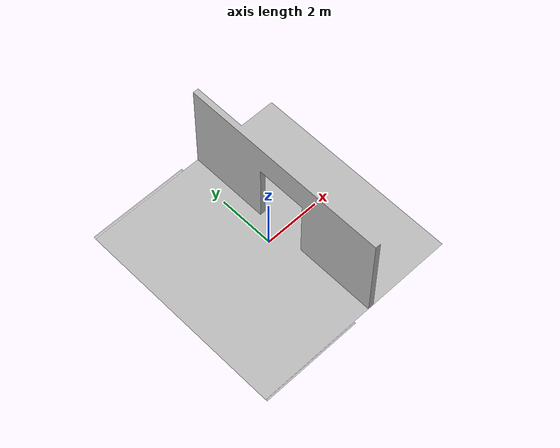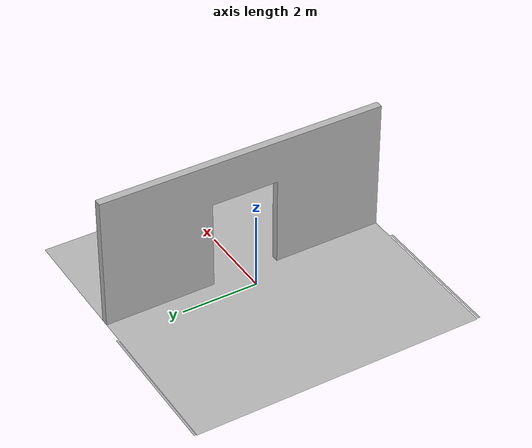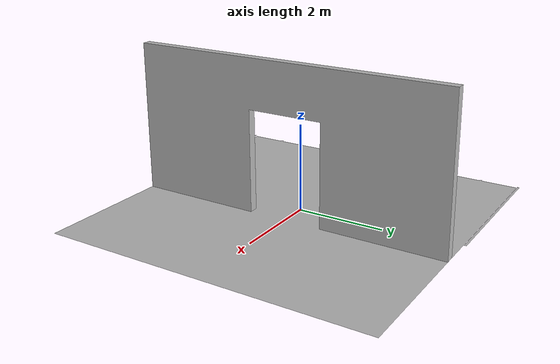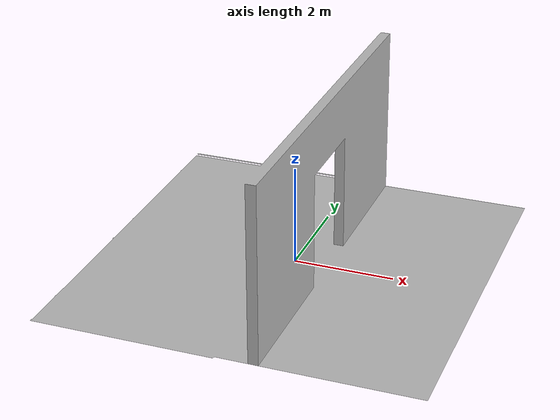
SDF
<?xml version="1.0" ?>
<sdf version="1.7">
  <model name="Wall_with_markers_big_board_threepattern">
    <static>true</static>
    <pose>0 0 0 0 0 0</pose>
    <link name="link">
    <visual name="visual">
      <geometry>
        <mesh>
          <uri>model://wall_with_markers_big_board_threepattern/meshes/model.dae</uri>
        </mesh>
      </geometry>
    </visual>
  </link>
</model>
</sdf>
